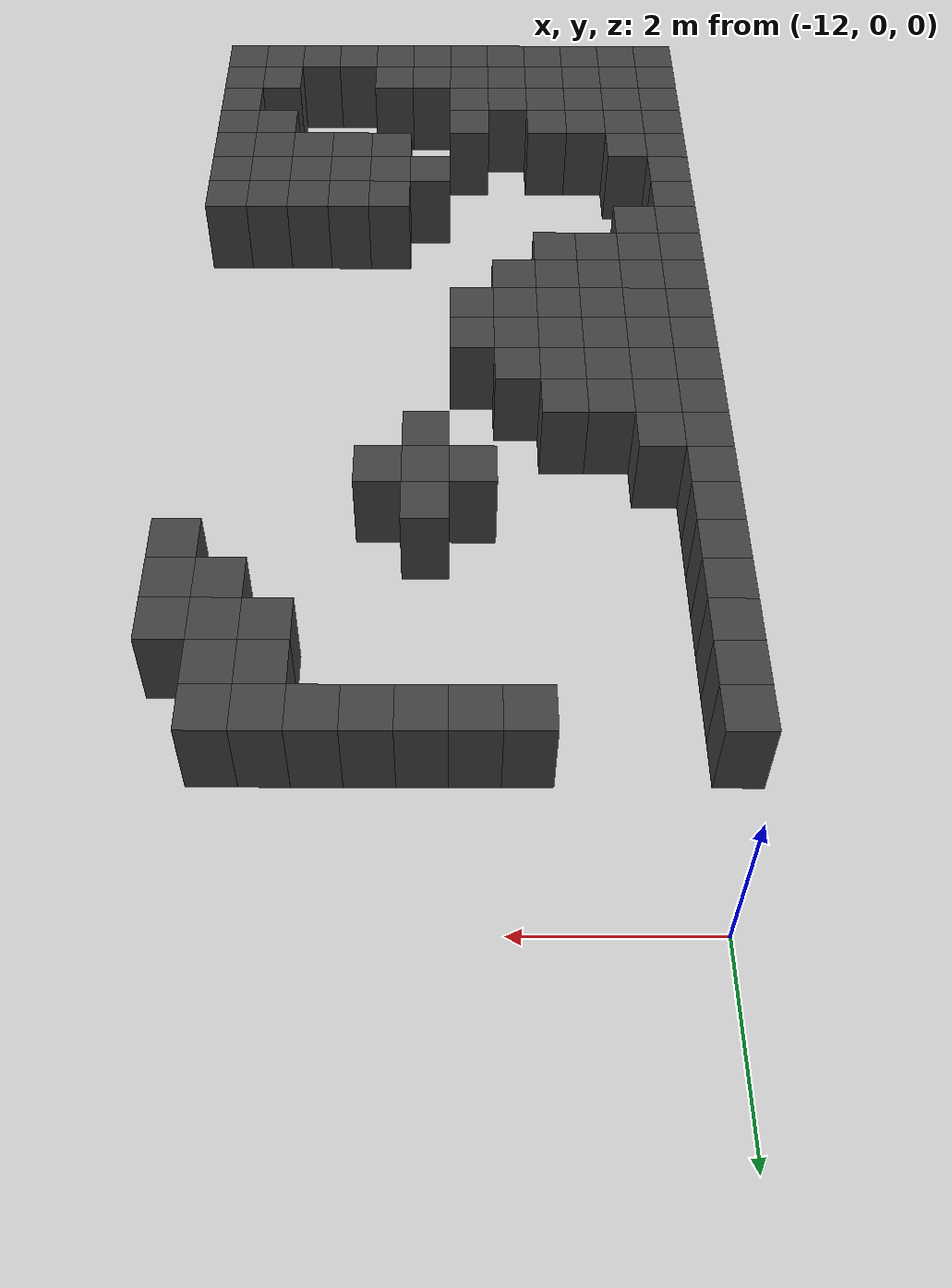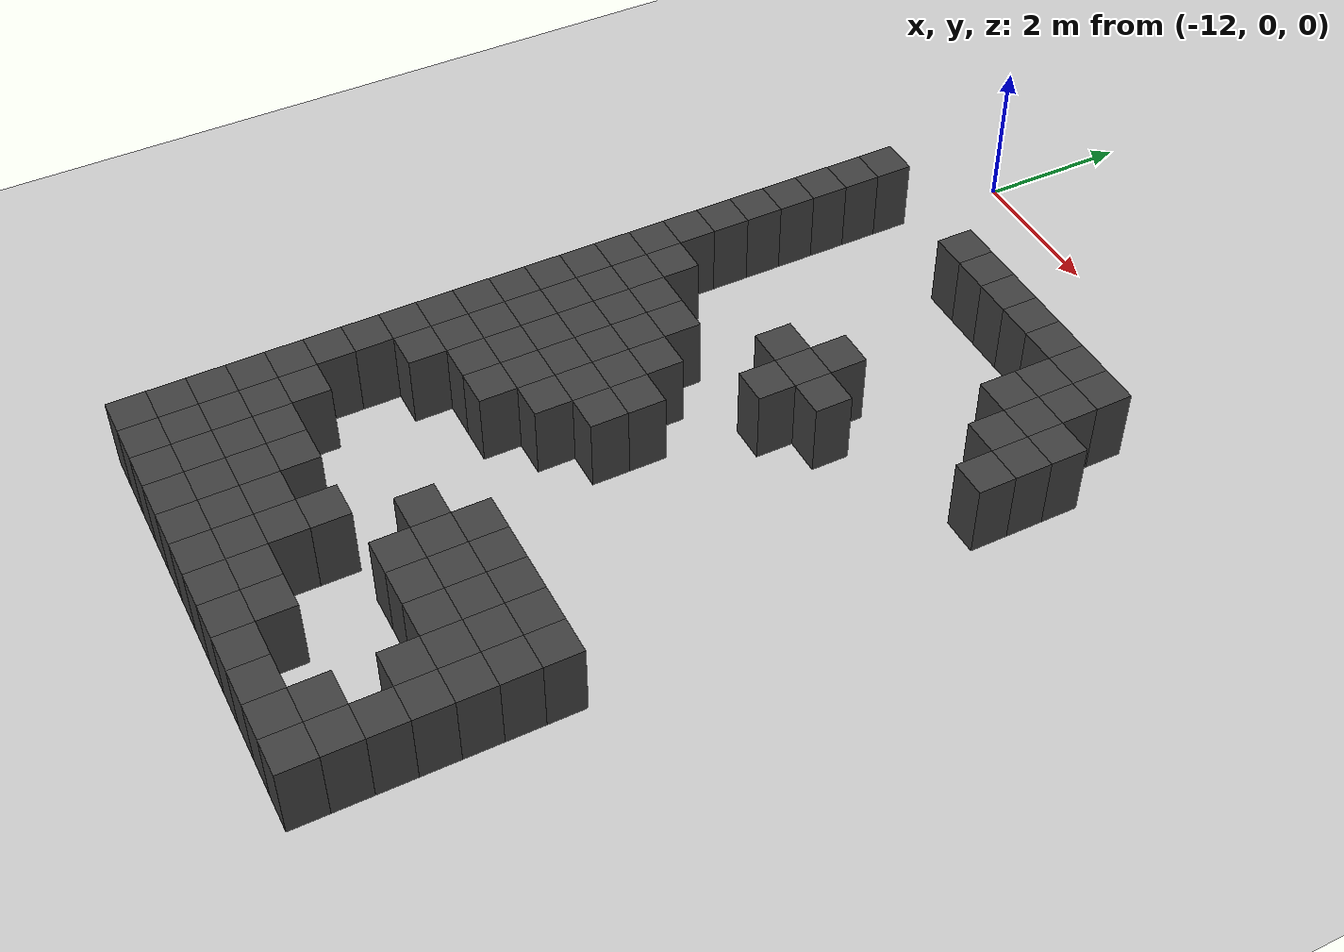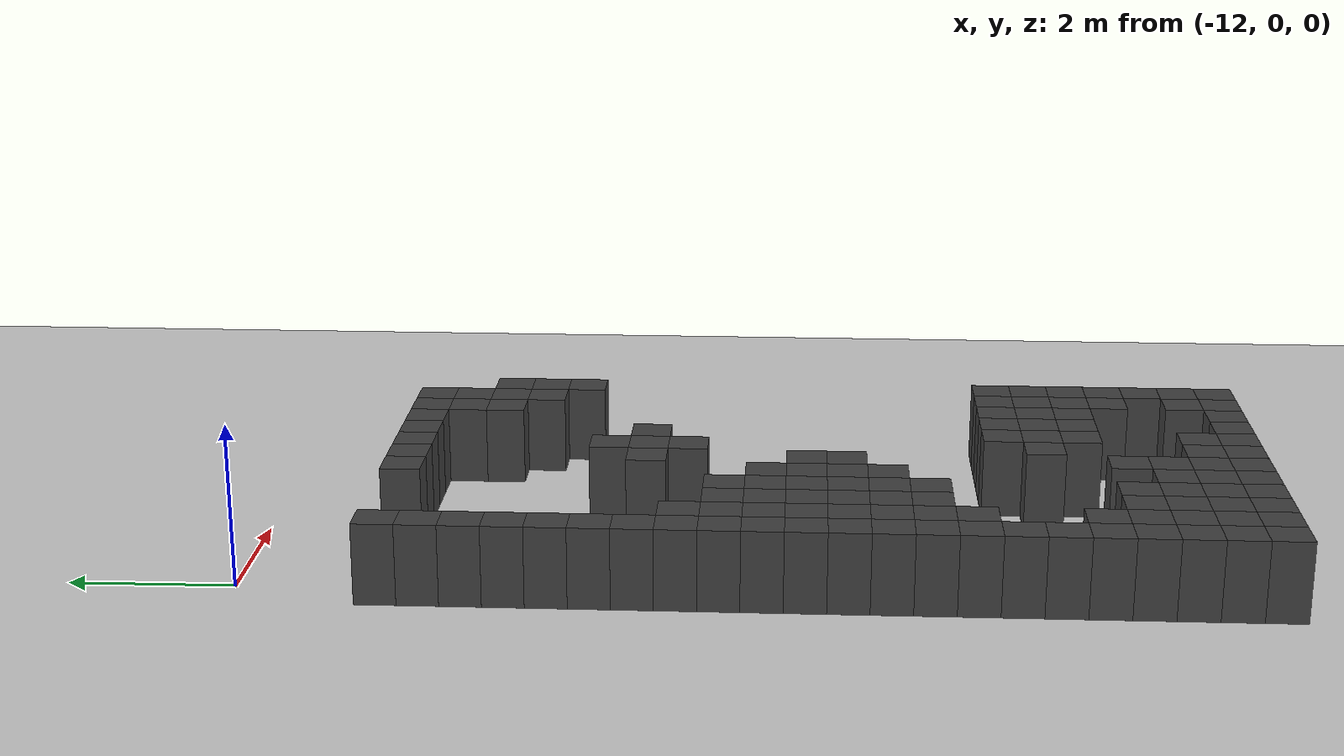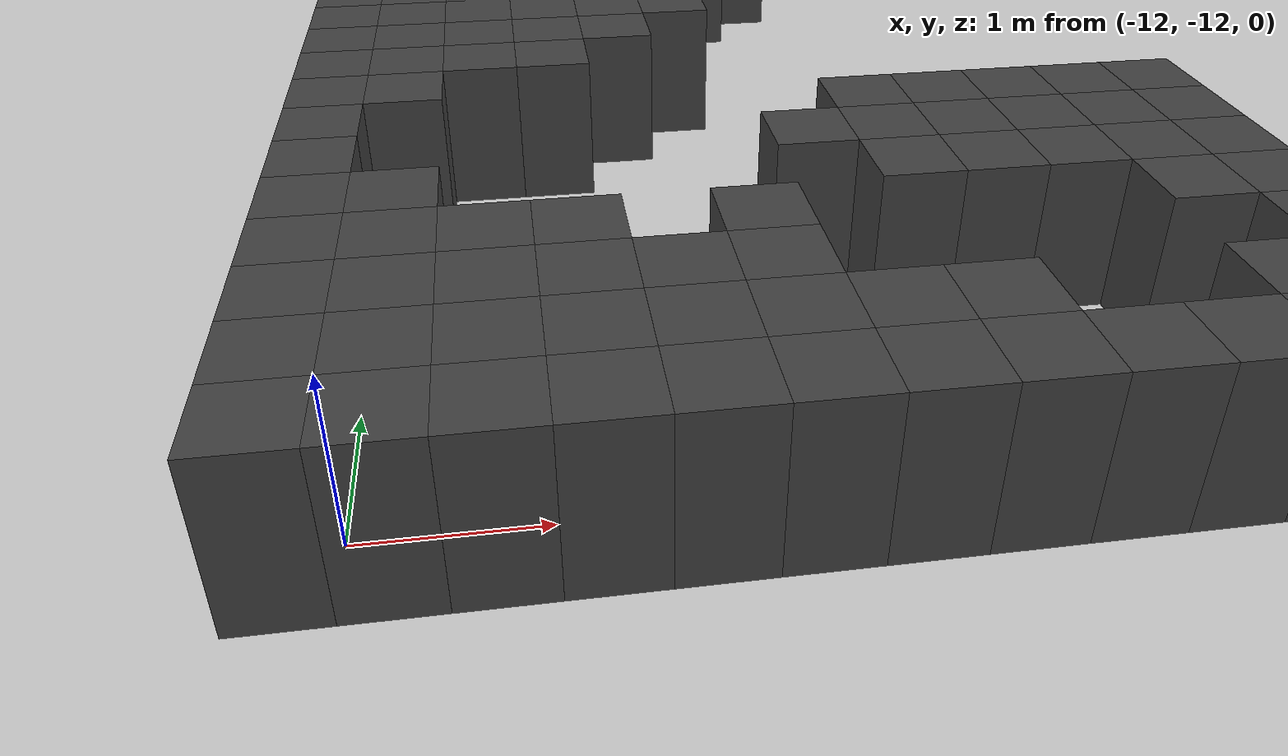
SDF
<sdf version="1.7">
 <world name="map_9061">
  <model name="ground_plane">
   <static>true</static>
   <link name="link">
    <collision name="collision">
     <geometry><plane><normal>0 0 1</normal><size>200 200</size></plane></geometry>
    </collision>
    <visual name="visual">
     <geometry><plane><normal>0 0 1</normal><size>200 200</size></plane></geometry>
     <material><ambient>0.8 0.8 0.8 1</ambient><diffuse>0.8 0.8 0.8 1</diffuse></material>
    </visual>
   </link>
  </model>
  <model name="maze_environment">
   <static>true</static>
   <link name="wall_466">
    <pose>-12.250 -1.750 0.500 0 0 0</pose>
    <collision name="col"><geometry><box><size>0.5 0.5 1.0</size></box></geometry></collision>
    <visual name="vis">
     <geometry><box><size>0.5 0.5 1.0</size></box></geometry>
     <material><ambient>0.15 0.15 0.15 1</ambient><diffuse>0.25 0.25 0.25 1</diffuse></material>
    </visual>
   </link>
   <link name="wall_467">
    <pose>-10.250 -1.750 0.500 0 0 0</pose>
    <collision name="col"><geometry><box><size>0.5 0.5 1.0</size></box></geometry></collision>
    <visual name="vis">
     <geometry><box><size>0.5 0.5 1.0</size></box></geometry>
     <material><ambient>0.15 0.15 0.15 1</ambient><diffuse>0.25 0.25 0.25 1</diffuse></material>
    </visual>
   </link>
   <link name="wall_468">
    <pose>-9.750 -1.750 0.500 0 0 0</pose>
    <collision name="col"><geometry><box><size>0.5 0.5 1.0</size></box></geometry></collision>
    <visual name="vis">
     <geometry><box><size>0.5 0.5 1.0</size></box></geometry>
     <material><ambient>0.15 0.15 0.15 1</ambient><diffuse>0.25 0.25 0.25 1</diffuse></material>
    </visual>
   </link>
   <link name="wall_469">
    <pose>-9.250 -1.750 0.500 0 0 0</pose>
    <collision name="col"><geometry><box><size>0.5 0.5 1.0</size></box></geometry></collision>
    <visual name="vis">
     <geometry><box><size>0.5 0.5 1.0</size></box></geometry>
     <material><ambient>0.15 0.15 0.15 1</ambient><diffuse>0.25 0.25 0.25 1</diffuse></material>
    </visual>
   </link>
   <link name="wall_470">
    <pose>-8.750 -1.750 0.500 0 0 0</pose>
    <collision name="col"><geometry><box><size>0.5 0.5 1.0</size></box></geometry></collision>
    <visual name="vis">
     <geometry><box><size>0.5 0.5 1.0</size></box></geometry>
     <material><ambient>0.15 0.15 0.15 1</ambient><diffuse>0.25 0.25 0.25 1</diffuse></material>
    </visual>
   </link>
   <link name="wall_471">
    <pose>-8.250 -1.750 0.500 0 0 0</pose>
    <collision name="col"><geometry><box><size>0.5 0.5 1.0</size></box></geometry></collision>
    <visual name="vis">
     <geometry><box><size>0.5 0.5 1.0</size></box></geometry>
     <material><ambient>0.15 0.15 0.15 1</ambient><diffuse>0.25 0.25 0.25 1</diffuse></material>
    </visual>
   </link>
   <link name="wall_472">
    <pose>-7.750 -1.750 0.500 0 0 0</pose>
    <collision name="col"><geometry><box><size>0.5 0.5 1.0</size></box></geometry></collision>
    <visual name="vis">
     <geometry><box><size>0.5 0.5 1.0</size></box></geometry>
     <material><ambient>0.15 0.15 0.15 1</ambient><diffuse>0.25 0.25 0.25 1</diffuse></material>
    </visual>
   </link>
   <link name="wall_473">
    <pose>-7.250 -1.750 0.500 0 0 0</pose>
    <collision name="col"><geometry><box><size>0.5 0.5 1.0</size></box></geometry></collision>
    <visual name="vis">
     <geometry><box><size>0.5 0.5 1.0</size></box></geometry>
     <material><ambient>0.15 0.15 0.15 1</ambient><diffuse>0.25 0.25 0.25 1</diffuse></material>
    </visual>
   </link>
   <link name="wall_485">
    <pose>-12.250 -2.250 0.500 0 0 0</pose>
    <collision name="col"><geometry><box><size>0.5 0.5 1.0</size></box></geometry></collision>
    <visual name="vis">
     <geometry><box><size>0.5 0.5 1.0</size></box></geometry>
     <material><ambient>0.15 0.15 0.15 1</ambient><diffuse>0.25 0.25 0.25 1</diffuse></material>
    </visual>
   </link>
   <link name="wall_486">
    <pose>-7.750 -2.250 0.500 0 0 0</pose>
    <collision name="col"><geometry><box><size>0.5 0.5 1.0</size></box></geometry></collision>
    <visual name="vis">
     <geometry><box><size>0.5 0.5 1.0</size></box></geometry>
     <material><ambient>0.15 0.15 0.15 1</ambient><diffuse>0.25 0.25 0.25 1</diffuse></material>
    </visual>
   </link>
   <link name="wall_487">
    <pose>-7.250 -2.250 0.500 0 0 0</pose>
    <collision name="col"><geometry><box><size>0.5 0.5 1.0</size></box></geometry></collision>
    <visual name="vis">
     <geometry><box><size>0.5 0.5 1.0</size></box></geometry>
     <material><ambient>0.15 0.15 0.15 1</ambient><diffuse>0.25 0.25 0.25 1</diffuse></material>
    </visual>
   </link>
   <link name="wall_509">
    <pose>-12.250 -2.750 0.500 0 0 0</pose>
    <collision name="col"><geometry><box><size>0.5 0.5 1.0</size></box></geometry></collision>
    <visual name="vis">
     <geometry><box><size>0.5 0.5 1.0</size></box></geometry>
     <material><ambient>0.15 0.15 0.15 1</ambient><diffuse>0.25 0.25 0.25 1</diffuse></material>
    </visual>
   </link>
   <link name="wall_510">
    <pose>-7.750 -2.750 0.500 0 0 0</pose>
    <collision name="col"><geometry><box><size>0.5 0.5 1.0</size></box></geometry></collision>
    <visual name="vis">
     <geometry><box><size>0.5 0.5 1.0</size></box></geometry>
     <material><ambient>0.15 0.15 0.15 1</ambient><diffuse>0.25 0.25 0.25 1</diffuse></material>
    </visual>
   </link>
   <link name="wall_511">
    <pose>-7.250 -2.750 0.500 0 0 0</pose>
    <collision name="col"><geometry><box><size>0.5 0.5 1.0</size></box></geometry></collision>
    <visual name="vis">
     <geometry><box><size>0.5 0.5 1.0</size></box></geometry>
     <material><ambient>0.15 0.15 0.15 1</ambient><diffuse>0.25 0.25 0.25 1</diffuse></material>
    </visual>
   </link>
   <link name="wall_512">
    <pose>-6.750 -2.750 0.500 0 0 0</pose>
    <collision name="col"><geometry><box><size>0.5 0.5 1.0</size></box></geometry></collision>
    <visual name="vis">
     <geometry><box><size>0.5 0.5 1.0</size></box></geometry>
     <material><ambient>0.15 0.15 0.15 1</ambient><diffuse>0.25 0.25 0.25 1</diffuse></material>
    </visual>
   </link>
   <link name="wall_541">
    <pose>-12.250 -3.250 0.500 0 0 0</pose>
    <collision name="col"><geometry><box><size>0.5 0.5 1.0</size></box></geometry></collision>
    <visual name="vis">
     <geometry><box><size>0.5 0.5 1.0</size></box></geometry>
     <material><ambient>0.15 0.15 0.15 1</ambient><diffuse>0.25 0.25 0.25 1</diffuse></material>
    </visual>
   </link>
   <link name="wall_542">
    <pose>-7.250 -3.250 0.500 0 0 0</pose>
    <collision name="col"><geometry><box><size>0.5 0.5 1.0</size></box></geometry></collision>
    <visual name="vis">
     <geometry><box><size>0.5 0.5 1.0</size></box></geometry>
     <material><ambient>0.15 0.15 0.15 1</ambient><diffuse>0.25 0.25 0.25 1</diffuse></material>
    </visual>
   </link>
   <link name="wall_543">
    <pose>-6.750 -3.250 0.500 0 0 0</pose>
    <collision name="col"><geometry><box><size>0.5 0.5 1.0</size></box></geometry></collision>
    <visual name="vis">
     <geometry><box><size>0.5 0.5 1.0</size></box></geometry>
     <material><ambient>0.15 0.15 0.15 1</ambient><diffuse>0.25 0.25 0.25 1</diffuse></material>
    </visual>
   </link>
   <link name="wall_571">
    <pose>-12.250 -3.750 0.500 0 0 0</pose>
    <collision name="col"><geometry><box><size>0.5 0.5 1.0</size></box></geometry></collision>
    <visual name="vis">
     <geometry><box><size>0.5 0.5 1.0</size></box></geometry>
     <material><ambient>0.15 0.15 0.15 1</ambient><diffuse>0.25 0.25 0.25 1</diffuse></material>
    </visual>
   </link>
   <link name="wall_572">
    <pose>-6.750 -3.750 0.500 0 0 0</pose>
    <collision name="col"><geometry><box><size>0.5 0.5 1.0</size></box></geometry></collision>
    <visual name="vis">
     <geometry><box><size>0.5 0.5 1.0</size></box></geometry>
     <material><ambient>0.15 0.15 0.15 1</ambient><diffuse>0.25 0.25 0.25 1</diffuse></material>
    </visual>
   </link>
   <link name="wall_600">
    <pose>-12.250 -4.250 0.500 0 0 0</pose>
    <collision name="col"><geometry><box><size>0.5 0.5 1.0</size></box></geometry></collision>
    <visual name="vis">
     <geometry><box><size>0.5 0.5 1.0</size></box></geometry>
     <material><ambient>0.15 0.15 0.15 1</ambient><diffuse>0.25 0.25 0.25 1</diffuse></material>
    </visual>
   </link>
   <link name="wall_601">
    <pose>-9.250 -4.250 0.500 0 0 0</pose>
    <collision name="col"><geometry><box><size>0.5 0.5 1.0</size></box></geometry></collision>
    <visual name="vis">
     <geometry><box><size>0.5 0.5 1.0</size></box></geometry>
     <material><ambient>0.15 0.15 0.15 1</ambient><diffuse>0.25 0.25 0.25 1</diffuse></material>
    </visual>
   </link>
   <link name="wall_624">
    <pose>-12.250 -4.750 0.500 0 0 0</pose>
    <collision name="col"><geometry><box><size>0.5 0.5 1.0</size></box></geometry></collision>
    <visual name="vis">
     <geometry><box><size>0.5 0.5 1.0</size></box></geometry>
     <material><ambient>0.15 0.15 0.15 1</ambient><diffuse>0.25 0.25 0.25 1</diffuse></material>
    </visual>
   </link>
   <link name="wall_625">
    <pose>-9.750 -4.750 0.500 0 0 0</pose>
    <collision name="col"><geometry><box><size>0.5 0.5 1.0</size></box></geometry></collision>
    <visual name="vis">
     <geometry><box><size>0.5 0.5 1.0</size></box></geometry>
     <material><ambient>0.15 0.15 0.15 1</ambient><diffuse>0.25 0.25 0.25 1</diffuse></material>
    </visual>
   </link>
   <link name="wall_626">
    <pose>-9.250 -4.750 0.500 0 0 0</pose>
    <collision name="col"><geometry><box><size>0.5 0.5 1.0</size></box></geometry></collision>
    <visual name="vis">
     <geometry><box><size>0.5 0.5 1.0</size></box></geometry>
     <material><ambient>0.15 0.15 0.15 1</ambient><diffuse>0.25 0.25 0.25 1</diffuse></material>
    </visual>
   </link>
   <link name="wall_627">
    <pose>-8.750 -4.750 0.500 0 0 0</pose>
    <collision name="col"><geometry><box><size>0.5 0.5 1.0</size></box></geometry></collision>
    <visual name="vis">
     <geometry><box><size>0.5 0.5 1.0</size></box></geometry>
     <material><ambient>0.15 0.15 0.15 1</ambient><diffuse>0.25 0.25 0.25 1</diffuse></material>
    </visual>
   </link>
   <link name="wall_643">
    <pose>-12.250 -5.250 0.500 0 0 0</pose>
    <collision name="col"><geometry><box><size>0.5 0.5 1.0</size></box></geometry></collision>
    <visual name="vis">
     <geometry><box><size>0.5 0.5 1.0</size></box></geometry>
     <material><ambient>0.15 0.15 0.15 1</ambient><diffuse>0.25 0.25 0.25 1</diffuse></material>
    </visual>
   </link>
   <link name="wall_644">
    <pose>-11.750 -5.250 0.500 0 0 0</pose>
    <collision name="col"><geometry><box><size>0.5 0.5 1.0</size></box></geometry></collision>
    <visual name="vis">
     <geometry><box><size>0.5 0.5 1.0</size></box></geometry>
     <material><ambient>0.15 0.15 0.15 1</ambient><diffuse>0.25 0.25 0.25 1</diffuse></material>
    </visual>
   </link>
   <link name="wall_645">
    <pose>-9.250 -5.250 0.500 0 0 0</pose>
    <collision name="col"><geometry><box><size>0.5 0.5 1.0</size></box></geometry></collision>
    <visual name="vis">
     <geometry><box><size>0.5 0.5 1.0</size></box></geometry>
     <material><ambient>0.15 0.15 0.15 1</ambient><diffuse>0.25 0.25 0.25 1</diffuse></material>
    </visual>
   </link>
   <link name="wall_657">
    <pose>-12.250 -5.750 0.500 0 0 0</pose>
    <collision name="col"><geometry><box><size>0.5 0.5 1.0</size></box></geometry></collision>
    <visual name="vis">
     <geometry><box><size>0.5 0.5 1.0</size></box></geometry>
     <material><ambient>0.15 0.15 0.15 1</ambient><diffuse>0.25 0.25 0.25 1</diffuse></material>
    </visual>
   </link>
   <link name="wall_658">
    <pose>-11.750 -5.750 0.500 0 0 0</pose>
    <collision name="col"><geometry><box><size>0.5 0.5 1.0</size></box></geometry></collision>
    <visual name="vis">
     <geometry><box><size>0.5 0.5 1.0</size></box></geometry>
     <material><ambient>0.15 0.15 0.15 1</ambient><diffuse>0.25 0.25 0.25 1</diffuse></material>
    </visual>
   </link>
   <link name="wall_659">
    <pose>-11.250 -5.750 0.500 0 0 0</pose>
    <collision name="col"><geometry><box><size>0.5 0.5 1.0</size></box></geometry></collision>
    <visual name="vis">
     <geometry><box><size>0.5 0.5 1.0</size></box></geometry>
     <material><ambient>0.15 0.15 0.15 1</ambient><diffuse>0.25 0.25 0.25 1</diffuse></material>
    </visual>
   </link>
   <link name="wall_660">
    <pose>-10.750 -5.750 0.500 0 0 0</pose>
    <collision name="col"><geometry><box><size>0.5 0.5 1.0</size></box></geometry></collision>
    <visual name="vis">
     <geometry><box><size>0.5 0.5 1.0</size></box></geometry>
     <material><ambient>0.15 0.15 0.15 1</ambient><diffuse>0.25 0.25 0.25 1</diffuse></material>
    </visual>
   </link>
   <link name="wall_673">
    <pose>-12.250 -6.250 0.500 0 0 0</pose>
    <collision name="col"><geometry><box><size>0.5 0.5 1.0</size></box></geometry></collision>
    <visual name="vis">
     <geometry><box><size>0.5 0.5 1.0</size></box></geometry>
     <material><ambient>0.15 0.15 0.15 1</ambient><diffuse>0.25 0.25 0.25 1</diffuse></material>
    </visual>
   </link>
   <link name="wall_674">
    <pose>-11.750 -6.250 0.500 0 0 0</pose>
    <collision name="col"><geometry><box><size>0.5 0.5 1.0</size></box></geometry></collision>
    <visual name="vis">
     <geometry><box><size>0.5 0.5 1.0</size></box></geometry>
     <material><ambient>0.15 0.15 0.15 1</ambient><diffuse>0.25 0.25 0.25 1</diffuse></material>
    </visual>
   </link>
   <link name="wall_675">
    <pose>-11.250 -6.250 0.500 0 0 0</pose>
    <collision name="col"><geometry><box><size>0.5 0.5 1.0</size></box></geometry></collision>
    <visual name="vis">
     <geometry><box><size>0.5 0.5 1.0</size></box></geometry>
     <material><ambient>0.15 0.15 0.15 1</ambient><diffuse>0.25 0.25 0.25 1</diffuse></material>
    </visual>
   </link>
   <link name="wall_676">
    <pose>-10.750 -6.250 0.500 0 0 0</pose>
    <collision name="col"><geometry><box><size>0.5 0.5 1.0</size></box></geometry></collision>
    <visual name="vis">
     <geometry><box><size>0.5 0.5 1.0</size></box></geometry>
     <material><ambient>0.15 0.15 0.15 1</ambient><diffuse>0.25 0.25 0.25 1</diffuse></material>
    </visual>
   </link>
   <link name="wall_677">
    <pose>-10.250 -6.250 0.500 0 0 0</pose>
    <collision name="col"><geometry><box><size>0.5 0.5 1.0</size></box></geometry></collision>
    <visual name="vis">
     <geometry><box><size>0.5 0.5 1.0</size></box></geometry>
     <material><ambient>0.15 0.15 0.15 1</ambient><diffuse>0.25 0.25 0.25 1</diffuse></material>
    </visual>
   </link>
   <link name="wall_689">
    <pose>-12.250 -6.750 0.500 0 0 0</pose>
    <collision name="col"><geometry><box><size>0.5 0.5 1.0</size></box></geometry></collision>
    <visual name="vis">
     <geometry><box><size>0.5 0.5 1.0</size></box></geometry>
     <material><ambient>0.15 0.15 0.15 1</ambient><diffuse>0.25 0.25 0.25 1</diffuse></material>
    </visual>
   </link>
   <link name="wall_690">
    <pose>-11.750 -6.750 0.500 0 0 0</pose>
    <collision name="col"><geometry><box><size>0.5 0.5 1.0</size></box></geometry></collision>
    <visual name="vis">
     <geometry><box><size>0.5 0.5 1.0</size></box></geometry>
     <material><ambient>0.15 0.15 0.15 1</ambient><diffuse>0.25 0.25 0.25 1</diffuse></material>
    </visual>
   </link>
   <link name="wall_691">
    <pose>-11.250 -6.750 0.500 0 0 0</pose>
    <collision name="col"><geometry><box><size>0.5 0.5 1.0</size></box></geometry></collision>
    <visual name="vis">
     <geometry><box><size>0.5 0.5 1.0</size></box></geometry>
     <material><ambient>0.15 0.15 0.15 1</ambient><diffuse>0.25 0.25 0.25 1</diffuse></material>
    </visual>
   </link>
   <link name="wall_692">
    <pose>-10.750 -6.750 0.500 0 0 0</pose>
    <collision name="col"><geometry><box><size>0.5 0.5 1.0</size></box></geometry></collision>
    <visual name="vis">
     <geometry><box><size>0.5 0.5 1.0</size></box></geometry>
     <material><ambient>0.15 0.15 0.15 1</ambient><diffuse>0.25 0.25 0.25 1</diffuse></material>
    </visual>
   </link>
   <link name="wall_693">
    <pose>-10.250 -6.750 0.500 0 0 0</pose>
    <collision name="col"><geometry><box><size>0.5 0.5 1.0</size></box></geometry></collision>
    <visual name="vis">
     <geometry><box><size>0.5 0.5 1.0</size></box></geometry>
     <material><ambient>0.15 0.15 0.15 1</ambient><diffuse>0.25 0.25 0.25 1</diffuse></material>
    </visual>
   </link>
   <link name="wall_694">
    <pose>-9.750 -6.750 0.500 0 0 0</pose>
    <collision name="col"><geometry><box><size>0.5 0.5 1.0</size></box></geometry></collision>
    <visual name="vis">
     <geometry><box><size>0.5 0.5 1.0</size></box></geometry>
     <material><ambient>0.15 0.15 0.15 1</ambient><diffuse>0.25 0.25 0.25 1</diffuse></material>
    </visual>
   </link>
   <link name="wall_707">
    <pose>-12.250 -7.250 0.500 0 0 0</pose>
    <collision name="col"><geometry><box><size>0.5 0.5 1.0</size></box></geometry></collision>
    <visual name="vis">
     <geometry><box><size>0.5 0.5 1.0</size></box></geometry>
     <material><ambient>0.15 0.15 0.15 1</ambient><diffuse>0.25 0.25 0.25 1</diffuse></material>
    </visual>
   </link>
   <link name="wall_708">
    <pose>-11.750 -7.250 0.500 0 0 0</pose>
    <collision name="col"><geometry><box><size>0.5 0.5 1.0</size></box></geometry></collision>
    <visual name="vis">
     <geometry><box><size>0.5 0.5 1.0</size></box></geometry>
     <material><ambient>0.15 0.15 0.15 1</ambient><diffuse>0.25 0.25 0.25 1</diffuse></material>
    </visual>
   </link>
   <link name="wall_709">
    <pose>-11.250 -7.250 0.500 0 0 0</pose>
    <collision name="col"><geometry><box><size>0.5 0.5 1.0</size></box></geometry></collision>
    <visual name="vis">
     <geometry><box><size>0.5 0.5 1.0</size></box></geometry>
     <material><ambient>0.15 0.15 0.15 1</ambient><diffuse>0.25 0.25 0.25 1</diffuse></material>
    </visual>
   </link>
   <link name="wall_710">
    <pose>-10.750 -7.250 0.500 0 0 0</pose>
    <collision name="col"><geometry><box><size>0.5 0.5 1.0</size></box></geometry></collision>
    <visual name="vis">
     <geometry><box><size>0.5 0.5 1.0</size></box></geometry>
     <material><ambient>0.15 0.15 0.15 1</ambient><diffuse>0.25 0.25 0.25 1</diffuse></material>
    </visual>
   </link>
   <link name="wall_711">
    <pose>-10.250 -7.250 0.500 0 0 0</pose>
    <collision name="col"><geometry><box><size>0.5 0.5 1.0</size></box></geometry></collision>
    <visual name="vis">
     <geometry><box><size>0.5 0.5 1.0</size></box></geometry>
     <material><ambient>0.15 0.15 0.15 1</ambient><diffuse>0.25 0.25 0.25 1</diffuse></material>
    </visual>
   </link>
   <link name="wall_712">
    <pose>-9.750 -7.250 0.500 0 0 0</pose>
    <collision name="col"><geometry><box><size>0.5 0.5 1.0</size></box></geometry></collision>
    <visual name="vis">
     <geometry><box><size>0.5 0.5 1.0</size></box></geometry>
     <material><ambient>0.15 0.15 0.15 1</ambient><diffuse>0.25 0.25 0.25 1</diffuse></material>
    </visual>
   </link>
   <link name="wall_724">
    <pose>-12.250 -7.750 0.500 0 0 0</pose>
    <collision name="col"><geometry><box><size>0.5 0.5 1.0</size></box></geometry></collision>
    <visual name="vis">
     <geometry><box><size>0.5 0.5 1.0</size></box></geometry>
     <material><ambient>0.15 0.15 0.15 1</ambient><diffuse>0.25 0.25 0.25 1</diffuse></material>
    </visual>
   </link>
   <link name="wall_725">
    <pose>-11.750 -7.750 0.500 0 0 0</pose>
    <collision name="col"><geometry><box><size>0.5 0.5 1.0</size></box></geometry></collision>
    <visual name="vis">
     <geometry><box><size>0.5 0.5 1.0</size></box></geometry>
     <material><ambient>0.15 0.15 0.15 1</ambient><diffuse>0.25 0.25 0.25 1</diffuse></material>
    </visual>
   </link>
   <link name="wall_726">
    <pose>-11.250 -7.750 0.500 0 0 0</pose>
    <collision name="col"><geometry><box><size>0.5 0.5 1.0</size></box></geometry></collision>
    <visual name="vis">
     <geometry><box><size>0.5 0.5 1.0</size></box></geometry>
     <material><ambient>0.15 0.15 0.15 1</ambient><diffuse>0.25 0.25 0.25 1</diffuse></material>
    </visual>
   </link>
   <link name="wall_727">
    <pose>-10.750 -7.750 0.500 0 0 0</pose>
    <collision name="col"><geometry><box><size>0.5 0.5 1.0</size></box></geometry></collision>
    <visual name="vis">
     <geometry><box><size>0.5 0.5 1.0</size></box></geometry>
     <material><ambient>0.15 0.15 0.15 1</ambient><diffuse>0.25 0.25 0.25 1</diffuse></material>
    </visual>
   </link>
   <link name="wall_728">
    <pose>-10.250 -7.750 0.500 0 0 0</pose>
    <collision name="col"><geometry><box><size>0.5 0.5 1.0</size></box></geometry></collision>
    <visual name="vis">
     <geometry><box><size>0.5 0.5 1.0</size></box></geometry>
     <material><ambient>0.15 0.15 0.15 1</ambient><diffuse>0.25 0.25 0.25 1</diffuse></material>
    </visual>
   </link>
   <link name="wall_737">
    <pose>-12.250 -8.250 0.500 0 0 0</pose>
    <collision name="col"><geometry><box><size>0.5 0.5 1.0</size></box></geometry></collision>
    <visual name="vis">
     <geometry><box><size>0.5 0.5 1.0</size></box></geometry>
     <material><ambient>0.15 0.15 0.15 1</ambient><diffuse>0.25 0.25 0.25 1</diffuse></material>
    </visual>
   </link>
   <link name="wall_738">
    <pose>-11.750 -8.250 0.500 0 0 0</pose>
    <collision name="col"><geometry><box><size>0.5 0.5 1.0</size></box></geometry></collision>
    <visual name="vis">
     <geometry><box><size>0.5 0.5 1.0</size></box></geometry>
     <material><ambient>0.15 0.15 0.15 1</ambient><diffuse>0.25 0.25 0.25 1</diffuse></material>
    </visual>
   </link>
   <link name="wall_739">
    <pose>-11.250 -8.250 0.500 0 0 0</pose>
    <collision name="col"><geometry><box><size>0.5 0.5 1.0</size></box></geometry></collision>
    <visual name="vis">
     <geometry><box><size>0.5 0.5 1.0</size></box></geometry>
     <material><ambient>0.15 0.15 0.15 1</ambient><diffuse>0.25 0.25 0.25 1</diffuse></material>
    </visual>
   </link>
   <link name="wall_740">
    <pose>-10.750 -8.250 0.500 0 0 0</pose>
    <collision name="col"><geometry><box><size>0.5 0.5 1.0</size></box></geometry></collision>
    <visual name="vis">
     <geometry><box><size>0.5 0.5 1.0</size></box></geometry>
     <material><ambient>0.15 0.15 0.15 1</ambient><diffuse>0.25 0.25 0.25 1</diffuse></material>
    </visual>
   </link>
   <link name="wall_747">
    <pose>-12.250 -8.750 0.500 0 0 0</pose>
    <collision name="col"><geometry><box><size>0.5 0.5 1.0</size></box></geometry></collision>
    <visual name="vis">
     <geometry><box><size>0.5 0.5 1.0</size></box></geometry>
     <material><ambient>0.15 0.15 0.15 1</ambient><diffuse>0.25 0.25 0.25 1</diffuse></material>
    </visual>
   </link>
   <link name="wall_748">
    <pose>-11.750 -8.750 0.500 0 0 0</pose>
    <collision name="col"><geometry><box><size>0.5 0.5 1.0</size></box></geometry></collision>
    <visual name="vis">
     <geometry><box><size>0.5 0.5 1.0</size></box></geometry>
     <material><ambient>0.15 0.15 0.15 1</ambient><diffuse>0.25 0.25 0.25 1</diffuse></material>
    </visual>
   </link>
   <link name="wall_757">
    <pose>-12.250 -9.250 0.500 0 0 0</pose>
    <collision name="col"><geometry><box><size>0.5 0.5 1.0</size></box></geometry></collision>
    <visual name="vis">
     <geometry><box><size>0.5 0.5 1.0</size></box></geometry>
     <material><ambient>0.15 0.15 0.15 1</ambient><diffuse>0.25 0.25 0.25 1</diffuse></material>
    </visual>
   </link>
   <link name="wall_758">
    <pose>-8.750 -9.250 0.500 0 0 0</pose>
    <collision name="col"><geometry><box><size>0.5 0.5 1.0</size></box></geometry></collision>
    <visual name="vis">
     <geometry><box><size>0.5 0.5 1.0</size></box></geometry>
     <material><ambient>0.15 0.15 0.15 1</ambient><diffuse>0.25 0.25 0.25 1</diffuse></material>
    </visual>
   </link>
   <link name="wall_759">
    <pose>-8.250 -9.250 0.500 0 0 0</pose>
    <collision name="col"><geometry><box><size>0.5 0.5 1.0</size></box></geometry></collision>
    <visual name="vis">
     <geometry><box><size>0.5 0.5 1.0</size></box></geometry>
     <material><ambient>0.15 0.15 0.15 1</ambient><diffuse>0.25 0.25 0.25 1</diffuse></material>
    </visual>
   </link>
   <link name="wall_760">
    <pose>-7.750 -9.250 0.500 0 0 0</pose>
    <collision name="col"><geometry><box><size>0.5 0.5 1.0</size></box></geometry></collision>
    <visual name="vis">
     <geometry><box><size>0.5 0.5 1.0</size></box></geometry>
     <material><ambient>0.15 0.15 0.15 1</ambient><diffuse>0.25 0.25 0.25 1</diffuse></material>
    </visual>
   </link>
   <link name="wall_761">
    <pose>-7.250 -9.250 0.500 0 0 0</pose>
    <collision name="col"><geometry><box><size>0.5 0.5 1.0</size></box></geometry></collision>
    <visual name="vis">
     <geometry><box><size>0.5 0.5 1.0</size></box></geometry>
     <material><ambient>0.15 0.15 0.15 1</ambient><diffuse>0.25 0.25 0.25 1</diffuse></material>
    </visual>
   </link>
   <link name="wall_762">
    <pose>-6.750 -9.250 0.500 0 0 0</pose>
    <collision name="col"><geometry><box><size>0.5 0.5 1.0</size></box></geometry></collision>
    <visual name="vis">
     <geometry><box><size>0.5 0.5 1.0</size></box></geometry>
     <material><ambient>0.15 0.15 0.15 1</ambient><diffuse>0.25 0.25 0.25 1</diffuse></material>
    </visual>
   </link>
   <link name="wall_773">
    <pose>-12.250 -9.750 0.500 0 0 0</pose>
    <collision name="col"><geometry><box><size>0.5 0.5 1.0</size></box></geometry></collision>
    <visual name="vis">
     <geometry><box><size>0.5 0.5 1.0</size></box></geometry>
     <material><ambient>0.15 0.15 0.15 1</ambient><diffuse>0.25 0.25 0.25 1</diffuse></material>
    </visual>
   </link>
   <link name="wall_774">
    <pose>-9.250 -9.750 0.500 0 0 0</pose>
    <collision name="col"><geometry><box><size>0.5 0.5 1.0</size></box></geometry></collision>
    <visual name="vis">
     <geometry><box><size>0.5 0.5 1.0</size></box></geometry>
     <material><ambient>0.15 0.15 0.15 1</ambient><diffuse>0.25 0.25 0.25 1</diffuse></material>
    </visual>
   </link>
   <link name="wall_775">
    <pose>-8.750 -9.750 0.500 0 0 0</pose>
    <collision name="col"><geometry><box><size>0.5 0.5 1.0</size></box></geometry></collision>
    <visual name="vis">
     <geometry><box><size>0.5 0.5 1.0</size></box></geometry>
     <material><ambient>0.15 0.15 0.15 1</ambient><diffuse>0.25 0.25 0.25 1</diffuse></material>
    </visual>
   </link>
   <link name="wall_776">
    <pose>-8.250 -9.750 0.500 0 0 0</pose>
    <collision name="col"><geometry><box><size>0.5 0.5 1.0</size></box></geometry></collision>
    <visual name="vis">
     <geometry><box><size>0.5 0.5 1.0</size></box></geometry>
     <material><ambient>0.15 0.15 0.15 1</ambient><diffuse>0.25 0.25 0.25 1</diffuse></material>
    </visual>
   </link>
   <link name="wall_777">
    <pose>-7.750 -9.750 0.500 0 0 0</pose>
    <collision name="col"><geometry><box><size>0.5 0.5 1.0</size></box></geometry></collision>
    <visual name="vis">
     <geometry><box><size>0.5 0.5 1.0</size></box></geometry>
     <material><ambient>0.15 0.15 0.15 1</ambient><diffuse>0.25 0.25 0.25 1</diffuse></material>
    </visual>
   </link>
   <link name="wall_778">
    <pose>-7.250 -9.750 0.500 0 0 0</pose>
    <collision name="col"><geometry><box><size>0.5 0.5 1.0</size></box></geometry></collision>
    <visual name="vis">
     <geometry><box><size>0.5 0.5 1.0</size></box></geometry>
     <material><ambient>0.15 0.15 0.15 1</ambient><diffuse>0.25 0.25 0.25 1</diffuse></material>
    </visual>
   </link>
   <link name="wall_779">
    <pose>-6.750 -9.750 0.500 0 0 0</pose>
    <collision name="col"><geometry><box><size>0.5 0.5 1.0</size></box></geometry></collision>
    <visual name="vis">
     <geometry><box><size>0.5 0.5 1.0</size></box></geometry>
     <material><ambient>0.15 0.15 0.15 1</ambient><diffuse>0.25 0.25 0.25 1</diffuse></material>
    </visual>
   </link>
   <link name="wall_789">
    <pose>-12.250 -10.250 0.500 0 0 0</pose>
    <collision name="col"><geometry><box><size>0.5 0.5 1.0</size></box></geometry></collision>
    <visual name="vis">
     <geometry><box><size>0.5 0.5 1.0</size></box></geometry>
     <material><ambient>0.15 0.15 0.15 1</ambient><diffuse>0.25 0.25 0.25 1</diffuse></material>
    </visual>
   </link>
   <link name="wall_790">
    <pose>-11.750 -10.250 0.500 0 0 0</pose>
    <collision name="col"><geometry><box><size>0.5 0.5 1.0</size></box></geometry></collision>
    <visual name="vis">
     <geometry><box><size>0.5 0.5 1.0</size></box></geometry>
     <material><ambient>0.15 0.15 0.15 1</ambient><diffuse>0.25 0.25 0.25 1</diffuse></material>
    </visual>
   </link>
   <link name="wall_791">
    <pose>-8.750 -10.250 0.500 0 0 0</pose>
    <collision name="col"><geometry><box><size>0.5 0.5 1.0</size></box></geometry></collision>
    <visual name="vis">
     <geometry><box><size>0.5 0.5 1.0</size></box></geometry>
     <material><ambient>0.15 0.15 0.15 1</ambient><diffuse>0.25 0.25 0.25 1</diffuse></material>
    </visual>
   </link>
   <link name="wall_792">
    <pose>-8.250 -10.250 0.500 0 0 0</pose>
    <collision name="col"><geometry><box><size>0.5 0.5 1.0</size></box></geometry></collision>
    <visual name="vis">
     <geometry><box><size>0.5 0.5 1.0</size></box></geometry>
     <material><ambient>0.15 0.15 0.15 1</ambient><diffuse>0.25 0.25 0.25 1</diffuse></material>
    </visual>
   </link>
   <link name="wall_793">
    <pose>-7.750 -10.250 0.500 0 0 0</pose>
    <collision name="col"><geometry><box><size>0.5 0.5 1.0</size></box></geometry></collision>
    <visual name="vis">
     <geometry><box><size>0.5 0.5 1.0</size></box></geometry>
     <material><ambient>0.15 0.15 0.15 1</ambient><diffuse>0.25 0.25 0.25 1</diffuse></material>
    </visual>
   </link>
   <link name="wall_794">
    <pose>-7.250 -10.250 0.500 0 0 0</pose>
    <collision name="col"><geometry><box><size>0.5 0.5 1.0</size></box></geometry></collision>
    <visual name="vis">
     <geometry><box><size>0.5 0.5 1.0</size></box></geometry>
     <material><ambient>0.15 0.15 0.15 1</ambient><diffuse>0.25 0.25 0.25 1</diffuse></material>
    </visual>
   </link>
   <link name="wall_795">
    <pose>-6.750 -10.250 0.500 0 0 0</pose>
    <collision name="col"><geometry><box><size>0.5 0.5 1.0</size></box></geometry></collision>
    <visual name="vis">
     <geometry><box><size>0.5 0.5 1.0</size></box></geometry>
     <material><ambient>0.15 0.15 0.15 1</ambient><diffuse>0.25 0.25 0.25 1</diffuse></material>
    </visual>
   </link>
   <link name="wall_805">
    <pose>-12.250 -10.750 0.500 0 0 0</pose>
    <collision name="col"><geometry><box><size>0.5 0.5 1.0</size></box></geometry></collision>
    <visual name="vis">
     <geometry><box><size>0.5 0.5 1.0</size></box></geometry>
     <material><ambient>0.15 0.15 0.15 1</ambient><diffuse>0.25 0.25 0.25 1</diffuse></material>
    </visual>
   </link>
   <link name="wall_806">
    <pose>-11.750 -10.750 0.500 0 0 0</pose>
    <collision name="col"><geometry><box><size>0.5 0.5 1.0</size></box></geometry></collision>
    <visual name="vis">
     <geometry><box><size>0.5 0.5 1.0</size></box></geometry>
     <material><ambient>0.15 0.15 0.15 1</ambient><diffuse>0.25 0.25 0.25 1</diffuse></material>
    </visual>
   </link>
   <link name="wall_807">
    <pose>-11.250 -10.750 0.500 0 0 0</pose>
    <collision name="col"><geometry><box><size>0.5 0.5 1.0</size></box></geometry></collision>
    <visual name="vis">
     <geometry><box><size>0.5 0.5 1.0</size></box></geometry>
     <material><ambient>0.15 0.15 0.15 1</ambient><diffuse>0.25 0.25 0.25 1</diffuse></material>
    </visual>
   </link>
   <link name="wall_808">
    <pose>-10.750 -10.750 0.500 0 0 0</pose>
    <collision name="col"><geometry><box><size>0.5 0.5 1.0</size></box></geometry></collision>
    <visual name="vis">
     <geometry><box><size>0.5 0.5 1.0</size></box></geometry>
     <material><ambient>0.15 0.15 0.15 1</ambient><diffuse>0.25 0.25 0.25 1</diffuse></material>
    </visual>
   </link>
   <link name="wall_809">
    <pose>-9.750 -10.750 0.500 0 0 0</pose>
    <collision name="col"><geometry><box><size>0.5 0.5 1.0</size></box></geometry></collision>
    <visual name="vis">
     <geometry><box><size>0.5 0.5 1.0</size></box></geometry>
     <material><ambient>0.15 0.15 0.15 1</ambient><diffuse>0.25 0.25 0.25 1</diffuse></material>
    </visual>
   </link>
   <link name="wall_810">
    <pose>-7.250 -10.750 0.500 0 0 0</pose>
    <collision name="col"><geometry><box><size>0.5 0.5 1.0</size></box></geometry></collision>
    <visual name="vis">
     <geometry><box><size>0.5 0.5 1.0</size></box></geometry>
     <material><ambient>0.15 0.15 0.15 1</ambient><diffuse>0.25 0.25 0.25 1</diffuse></material>
    </visual>
   </link>
   <link name="wall_811">
    <pose>-6.750 -10.750 0.500 0 0 0</pose>
    <collision name="col"><geometry><box><size>0.5 0.5 1.0</size></box></geometry></collision>
    <visual name="vis">
     <geometry><box><size>0.5 0.5 1.0</size></box></geometry>
     <material><ambient>0.15 0.15 0.15 1</ambient><diffuse>0.25 0.25 0.25 1</diffuse></material>
    </visual>
   </link>
   <link name="wall_824">
    <pose>-12.250 -11.250 0.500 0 0 0</pose>
    <collision name="col"><geometry><box><size>0.5 0.5 1.0</size></box></geometry></collision>
    <visual name="vis">
     <geometry><box><size>0.5 0.5 1.0</size></box></geometry>
     <material><ambient>0.15 0.15 0.15 1</ambient><diffuse>0.25 0.25 0.25 1</diffuse></material>
    </visual>
   </link>
   <link name="wall_825">
    <pose>-11.750 -11.250 0.500 0 0 0</pose>
    <collision name="col"><geometry><box><size>0.5 0.5 1.0</size></box></geometry></collision>
    <visual name="vis">
     <geometry><box><size>0.5 0.5 1.0</size></box></geometry>
     <material><ambient>0.15 0.15 0.15 1</ambient><diffuse>0.25 0.25 0.25 1</diffuse></material>
    </visual>
   </link>
   <link name="wall_826">
    <pose>-11.250 -11.250 0.500 0 0 0</pose>
    <collision name="col"><geometry><box><size>0.5 0.5 1.0</size></box></geometry></collision>
    <visual name="vis">
     <geometry><box><size>0.5 0.5 1.0</size></box></geometry>
     <material><ambient>0.15 0.15 0.15 1</ambient><diffuse>0.25 0.25 0.25 1</diffuse></material>
    </visual>
   </link>
   <link name="wall_827">
    <pose>-10.750 -11.250 0.500 0 0 0</pose>
    <collision name="col"><geometry><box><size>0.5 0.5 1.0</size></box></geometry></collision>
    <visual name="vis">
     <geometry><box><size>0.5 0.5 1.0</size></box></geometry>
     <material><ambient>0.15 0.15 0.15 1</ambient><diffuse>0.25 0.25 0.25 1</diffuse></material>
    </visual>
   </link>
   <link name="wall_828">
    <pose>-10.250 -11.250 0.500 0 0 0</pose>
    <collision name="col"><geometry><box><size>0.5 0.5 1.0</size></box></geometry></collision>
    <visual name="vis">
     <geometry><box><size>0.5 0.5 1.0</size></box></geometry>
     <material><ambient>0.15 0.15 0.15 1</ambient><diffuse>0.25 0.25 0.25 1</diffuse></material>
    </visual>
   </link>
   <link name="wall_829">
    <pose>-9.750 -11.250 0.500 0 0 0</pose>
    <collision name="col"><geometry><box><size>0.5 0.5 1.0</size></box></geometry></collision>
    <visual name="vis">
     <geometry><box><size>0.5 0.5 1.0</size></box></geometry>
     <material><ambient>0.15 0.15 0.15 1</ambient><diffuse>0.25 0.25 0.25 1</diffuse></material>
    </visual>
   </link>
   <link name="wall_830">
    <pose>-6.750 -11.250 0.500 0 0 0</pose>
    <collision name="col"><geometry><box><size>0.5 0.5 1.0</size></box></geometry></collision>
    <visual name="vis">
     <geometry><box><size>0.5 0.5 1.0</size></box></geometry>
     <material><ambient>0.15 0.15 0.15 1</ambient><diffuse>0.25 0.25 0.25 1</diffuse></material>
    </visual>
   </link>
   <link name="wall_851">
    <pose>-12.250 -11.750 0.500 0 0 0</pose>
    <collision name="col"><geometry><box><size>0.5 0.5 1.0</size></box></geometry></collision>
    <visual name="vis">
     <geometry><box><size>0.5 0.5 1.0</size></box></geometry>
     <material><ambient>0.15 0.15 0.15 1</ambient><diffuse>0.25 0.25 0.25 1</diffuse></material>
    </visual>
   </link>
   <link name="wall_852">
    <pose>-11.750 -11.750 0.500 0 0 0</pose>
    <collision name="col"><geometry><box><size>0.5 0.5 1.0</size></box></geometry></collision>
    <visual name="vis">
     <geometry><box><size>0.5 0.5 1.0</size></box></geometry>
     <material><ambient>0.15 0.15 0.15 1</ambient><diffuse>0.25 0.25 0.25 1</diffuse></material>
    </visual>
   </link>
   <link name="wall_853">
    <pose>-11.250 -11.750 0.500 0 0 0</pose>
    <collision name="col"><geometry><box><size>0.5 0.5 1.0</size></box></geometry></collision>
    <visual name="vis">
     <geometry><box><size>0.5 0.5 1.0</size></box></geometry>
     <material><ambient>0.15 0.15 0.15 1</ambient><diffuse>0.25 0.25 0.25 1</diffuse></material>
    </visual>
   </link>
   <link name="wall_854">
    <pose>-10.750 -11.750 0.500 0 0 0</pose>
    <collision name="col"><geometry><box><size>0.5 0.5 1.0</size></box></geometry></collision>
    <visual name="vis">
     <geometry><box><size>0.5 0.5 1.0</size></box></geometry>
     <material><ambient>0.15 0.15 0.15 1</ambient><diffuse>0.25 0.25 0.25 1</diffuse></material>
    </visual>
   </link>
   <link name="wall_855">
    <pose>-10.250 -11.750 0.500 0 0 0</pose>
    <collision name="col"><geometry><box><size>0.5 0.5 1.0</size></box></geometry></collision>
    <visual name="vis">
     <geometry><box><size>0.5 0.5 1.0</size></box></geometry>
     <material><ambient>0.15 0.15 0.15 1</ambient><diffuse>0.25 0.25 0.25 1</diffuse></material>
    </visual>
   </link>
   <link name="wall_856">
    <pose>-9.750 -11.750 0.500 0 0 0</pose>
    <collision name="col"><geometry><box><size>0.5 0.5 1.0</size></box></geometry></collision>
    <visual name="vis">
     <geometry><box><size>0.5 0.5 1.0</size></box></geometry>
     <material><ambient>0.15 0.15 0.15 1</ambient><diffuse>0.25 0.25 0.25 1</diffuse></material>
    </visual>
   </link>
   <link name="wall_857">
    <pose>-9.250 -11.750 0.500 0 0 0</pose>
    <collision name="col"><geometry><box><size>0.5 0.5 1.0</size></box></geometry></collision>
    <visual name="vis">
     <geometry><box><size>0.5 0.5 1.0</size></box></geometry>
     <material><ambient>0.15 0.15 0.15 1</ambient><diffuse>0.25 0.25 0.25 1</diffuse></material>
    </visual>
   </link>
   <link name="wall_858">
    <pose>-8.750 -11.750 0.500 0 0 0</pose>
    <collision name="col"><geometry><box><size>0.5 0.5 1.0</size></box></geometry></collision>
    <visual name="vis">
     <geometry><box><size>0.5 0.5 1.0</size></box></geometry>
     <material><ambient>0.15 0.15 0.15 1</ambient><diffuse>0.25 0.25 0.25 1</diffuse></material>
    </visual>
   </link>
   <link name="wall_859">
    <pose>-7.250 -11.750 0.500 0 0 0</pose>
    <collision name="col"><geometry><box><size>0.5 0.5 1.0</size></box></geometry></collision>
    <visual name="vis">
     <geometry><box><size>0.5 0.5 1.0</size></box></geometry>
     <material><ambient>0.15 0.15 0.15 1</ambient><diffuse>0.25 0.25 0.25 1</diffuse></material>
    </visual>
   </link>
   <link name="wall_860">
    <pose>-6.750 -11.750 0.500 0 0 0</pose>
    <collision name="col"><geometry><box><size>0.5 0.5 1.0</size></box></geometry></collision>
    <visual name="vis">
     <geometry><box><size>0.5 0.5 1.0</size></box></geometry>
     <material><ambient>0.15 0.15 0.15 1</ambient><diffuse>0.25 0.25 0.25 1</diffuse></material>
    </visual>
   </link>
   <link name="wall_887">
    <pose>-12.250 -12.250 0.500 0 0 0</pose>
    <collision name="col"><geometry><box><size>0.5 0.5 1.0</size></box></geometry></collision>
    <visual name="vis">
     <geometry><box><size>0.5 0.5 1.0</size></box></geometry>
     <material><ambient>0.15 0.15 0.15 1</ambient><diffuse>0.25 0.25 0.25 1</diffuse></material>
    </visual>
   </link>
   <link name="wall_888">
    <pose>-11.750 -12.250 0.500 0 0 0</pose>
    <collision name="col"><geometry><box><size>0.5 0.5 1.0</size></box></geometry></collision>
    <visual name="vis">
     <geometry><box><size>0.5 0.5 1.0</size></box></geometry>
     <material><ambient>0.15 0.15 0.15 1</ambient><diffuse>0.25 0.25 0.25 1</diffuse></material>
    </visual>
   </link>
   <link name="wall_889">
    <pose>-11.250 -12.250 0.500 0 0 0</pose>
    <collision name="col"><geometry><box><size>0.5 0.5 1.0</size></box></geometry></collision>
    <visual name="vis">
     <geometry><box><size>0.5 0.5 1.0</size></box></geometry>
     <material><ambient>0.15 0.15 0.15 1</ambient><diffuse>0.25 0.25 0.25 1</diffuse></material>
    </visual>
   </link>
   <link name="wall_890">
    <pose>-10.750 -12.250 0.500 0 0 0</pose>
    <collision name="col"><geometry><box><size>0.5 0.5 1.0</size></box></geometry></collision>
    <visual name="vis">
     <geometry><box><size>0.5 0.5 1.0</size></box></geometry>
     <material><ambient>0.15 0.15 0.15 1</ambient><diffuse>0.25 0.25 0.25 1</diffuse></material>
    </visual>
   </link>
   <link name="wall_891">
    <pose>-10.250 -12.250 0.500 0 0 0</pose>
    <collision name="col"><geometry><box><size>0.5 0.5 1.0</size></box></geometry></collision>
    <visual name="vis">
     <geometry><box><size>0.5 0.5 1.0</size></box></geometry>
     <material><ambient>0.15 0.15 0.15 1</ambient><diffuse>0.25 0.25 0.25 1</diffuse></material>
    </visual>
   </link>
   <link name="wall_892">
    <pose>-9.750 -12.250 0.500 0 0 0</pose>
    <collision name="col"><geometry><box><size>0.5 0.5 1.0</size></box></geometry></collision>
    <visual name="vis">
     <geometry><box><size>0.5 0.5 1.0</size></box></geometry>
     <material><ambient>0.15 0.15 0.15 1</ambient><diffuse>0.25 0.25 0.25 1</diffuse></material>
    </visual>
   </link>
   <link name="wall_893">
    <pose>-9.250 -12.250 0.500 0 0 0</pose>
    <collision name="col"><geometry><box><size>0.5 0.5 1.0</size></box></geometry></collision>
    <visual name="vis">
     <geometry><box><size>0.5 0.5 1.0</size></box></geometry>
     <material><ambient>0.15 0.15 0.15 1</ambient><diffuse>0.25 0.25 0.25 1</diffuse></material>
    </visual>
   </link>
   <link name="wall_894">
    <pose>-8.750 -12.250 0.500 0 0 0</pose>
    <collision name="col"><geometry><box><size>0.5 0.5 1.0</size></box></geometry></collision>
    <visual name="vis">
     <geometry><box><size>0.5 0.5 1.0</size></box></geometry>
     <material><ambient>0.15 0.15 0.15 1</ambient><diffuse>0.25 0.25 0.25 1</diffuse></material>
    </visual>
   </link>
   <link name="wall_895">
    <pose>-8.250 -12.250 0.500 0 0 0</pose>
    <collision name="col"><geometry><box><size>0.5 0.5 1.0</size></box></geometry></collision>
    <visual name="vis">
     <geometry><box><size>0.5 0.5 1.0</size></box></geometry>
     <material><ambient>0.15 0.15 0.15 1</ambient><diffuse>0.25 0.25 0.25 1</diffuse></material>
    </visual>
   </link>
   <link name="wall_896">
    <pose>-7.750 -12.250 0.500 0 0 0</pose>
    <collision name="col"><geometry><box><size>0.5 0.5 1.0</size></box></geometry></collision>
    <visual name="vis">
     <geometry><box><size>0.5 0.5 1.0</size></box></geometry>
     <material><ambient>0.15 0.15 0.15 1</ambient><diffuse>0.25 0.25 0.25 1</diffuse></material>
    </visual>
   </link>
   <link name="wall_897">
    <pose>-7.250 -12.250 0.500 0 0 0</pose>
    <collision name="col"><geometry><box><size>0.5 0.5 1.0</size></box></geometry></collision>
    <visual name="vis">
     <geometry><box><size>0.5 0.5 1.0</size></box></geometry>
     <material><ambient>0.15 0.15 0.15 1</ambient><diffuse>0.25 0.25 0.25 1</diffuse></material>
    </visual>
   </link>
   <link name="wall_898">
    <pose>-6.750 -12.250 0.500 0 0 0</pose>
    <collision name="col"><geometry><box><size>0.5 0.5 1.0</size></box></geometry></collision>
    <visual name="vis">
     <geometry><box><size>0.5 0.5 1.0</size></box></geometry>
     <material><ambient>0.15 0.15 0.15 1</ambient><diffuse>0.25 0.25 0.25 1</diffuse></material>
    </visual>
   </link>
  </model>
 </world>
</sdf>
